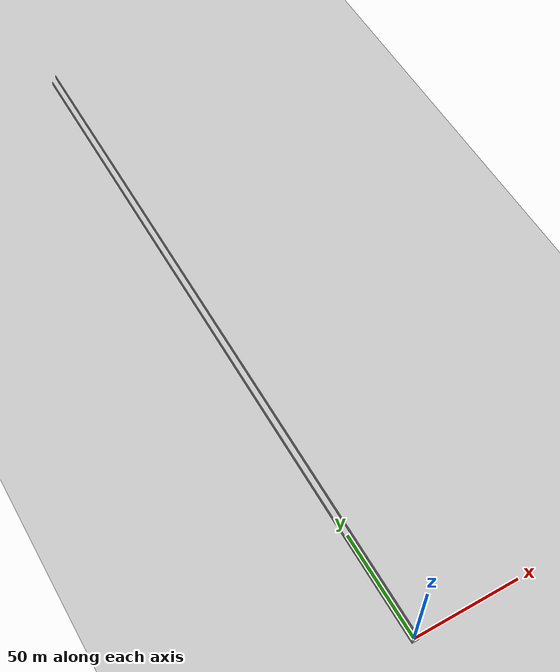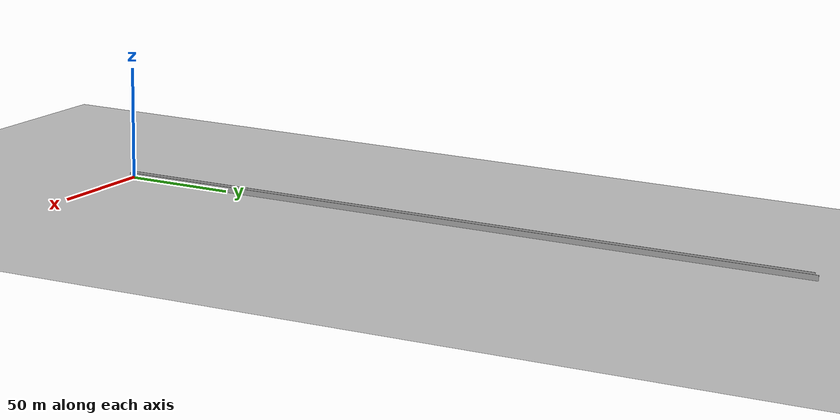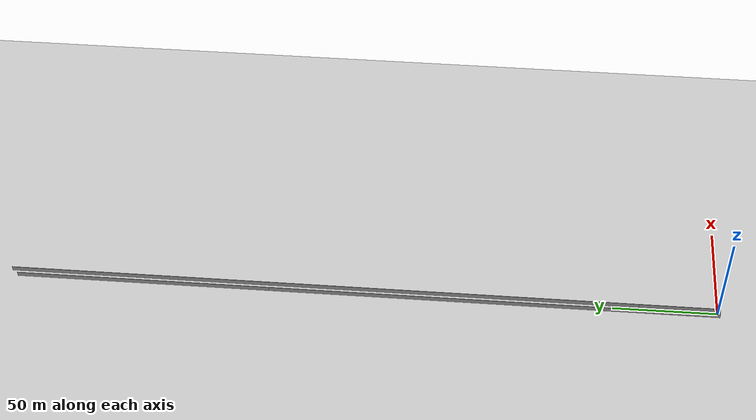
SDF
<sdf version="1.6">
 <world name="default">
  <model name="ground_plane">
   <static>1</static>
   <link name="link">
    <collision name="collision">
     <geometry><plane><normal>0 0 1</normal><size>100 100</size></plane></geometry>
     <surface><friction><ode><mu>100</mu><mu2>50</mu2></ode></friction></surface>
    </collision>
    <visual name="visual">
     <cast_shadows>0</cast_shadows>
     <geometry><plane><normal>0 0 1</normal><size>100 100</size></plane></geometry>
     <material>
      <script><uri>file://media/materials/scripts/gazebo.material</uri><name>Gazebo/Grey</name></script>
     </material>
    </visual>
    <velocity_decay><linear>0</linear><angular>0</angular></velocity_decay>
   </link>
  </model>
  <light name="sun" type="directional">
   <pose>0 0 10 0 -0 0</pose>
   <diffuse>0.8 0.8 0.8 1</diffuse>
   <specular>0.2 0.2 0.2 1</specular>
   <attenuation>
    <range>1000</range>
    <constant>0.9</constant>
    <linear>0.01</linear>
    <quadratic>0.001</quadratic>
   </attenuation>
   <direction>-0.5 0.1 -0.9</direction>
  </light>
  <physics name="default_physics" default="0" type="ode">
   <max_step_size>0.001</max_step_size>
   <real_time_factor>1</real_time_factor>
   <real_time_update_rate>1000</real_time_update_rate>
  </physics>
  <scene><ambient>0.4 0.4 0.4 1</ambient><background>0.7 0.7 0.7 1</background><shadows>1</shadows></scene>
  <spherical_coordinates>
   <surface_model>EARTH_WGS84</surface_model>
   <latitude_deg>0</latitude_deg>
   <longitude_deg>0</longitude_deg>
   <elevation>0</elevation>
   <heading_deg>0</heading_deg>
  </spherical_coordinates>
  <model name="long-corridor">
   <link name="Wall_0">
    <collision name="Wall_0_Collision">
     <geometry><box><size>3.37 0.2 2.5</size></box></geometry>
     <pose>0 0 1.25 0 -0 0</pose>
    </collision>
    <visual name="Wall_0_Visual">
     <pose>0 0 1.25 0 -0 0</pose>
     <geometry><box><size>3.37 0.2 2.5</size></box></geometry>
     <material>
      <script><uri>file://media/materials/scripts/gazebo.material</uri><name>Gazebo/Grey</name></script>
     </material>
    </visual>
    <velocity_decay><linear>0</linear><angular>0</angular></velocity_decay>
    <pose>-0.175 -1.17 0 0 -0 0</pose>
   </link>
   <link name="Wall_1">
    <collision name="Wall_1_Collision">
     <geometry><box><size>38.6793 0.2 2.5</size></box></geometry>
     <pose>0 0 1.25 0 -0 0</pose>
    </collision>
    <visual name="Wall_1_Visual">
     <pose>0 0 1.25 0 -0 0</pose>
     <geometry><box><size>38.6793 0.2 2.5</size></box></geometry>
     <material>
      <script><uri>file://media/materials/scripts/gazebo.material</uri><name>Gazebo/Grey</name></script>
     </material>
    </visual>
    <velocity_decay><linear>0</linear><angular>0</angular></velocity_decay>
    <pose>1.41 18.0697 0 0 -0 1.5708</pose>
   </link>
   <link name="Wall_2">
    <collision name="Wall_2_Collision">
     <geometry><box><size>304.557 0.2 2.5</size></box></geometry>
     <pose>0 0 1.25 0 -0 0</pose>
    </collision>
    <visual name="Wall_2_Visual">
     <pose>0 0 1.25 0 -0 0</pose>
     <geometry><box><size>304.557 0.2 2.5</size></box></geometry>
     <material>
      <script><uri>file://media/materials/scripts/gazebo.material</uri><name>Gazebo/Grey</name></script>
     </material>
    </visual>
    <velocity_decay><linear>0</linear><angular>0</angular></velocity_decay>
    <pose>1.41 189.488 0 0 -0 1.5708</pose>
   </link>
   <link name="Wall_4">
    <collision name="Wall_4_Collision">
     <geometry><box><size>216.933 0.2 2.5</size></box></geometry>
     <pose>0 0 1.25 0 -0 0</pose>
    </collision>
    <visual name="Wall_4_Visual">
     <pose>0 0 1.25 0 -0 0</pose>
     <geometry><box><size>216.933 0.2 2.5</size></box></geometry>
     <material>
      <script><uri>file://media/materials/scripts/gazebo.material</uri><name>Gazebo/Grey</name></script>
     </material>
    </visual>
    <velocity_decay><linear>0</linear><angular>0</angular></velocity_decay>
    <pose>-1.83536 107.2 0 0 -0 1.5708</pose>
   </link>
   <link name="Wall_5">
    <collision name="Wall_5_Collision">
     <geometry><box><size>123.12 0.2 2.5</size></box></geometry>
     <pose>0 0 1.25 0 -0 0</pose>
    </collision>
    <visual name="Wall_5_Visual">
     <pose>0 0 1.25 0 -0 0</pose>
     <geometry><box><size>123.12 0.2 2.5</size></box></geometry>
     <material>
      <script><uri>file://media/materials/scripts/gazebo.material</uri><name>Gazebo/Grey</name></script>
     </material>
    </visual>
    <velocity_decay><linear>0</linear><angular>0</angular></velocity_decay>
    <pose>-1.83536 277.026 0 0 -0 1.5708</pose>
   </link>
   <static>1</static>
  </model>
  <gravity>0 0 -9.8</gravity>
  <magnetic_field>6e-06 2.3e-05 -4.2e-05</magnetic_field>
  <atmosphere type="adiabatic"/>
 </world>
</sdf>
